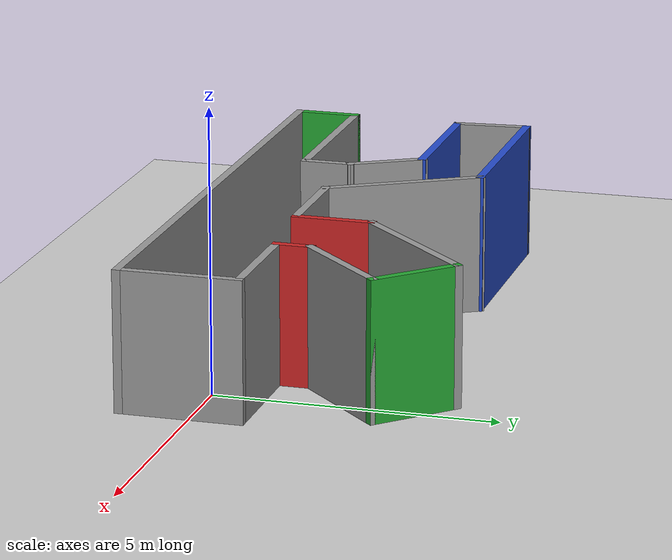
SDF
<sdf version="1.6">
 <world name="default">
  <light name="sun" type="directional">
   <pose>0 0 10 0 -0 0</pose>
   <diffuse>0.8 0.8 0.8 1</diffuse>
   <specular>0.2 0.2 0.2 1</specular>
   <attenuation>
    <range>1000</range>
    <constant>0.9</constant>
    <linear>0.01</linear>
    <quadratic>0.001</quadratic>
   </attenuation>
   <direction>-0.5 0.1 -0.9</direction>
  </light>
  <model name="ground_plane">
   <static>1</static>
   <link name="link">
    <collision name="collision">
     <geometry><plane><normal>0 0 1</normal><size>100 100</size></plane></geometry>
     <surface><friction><ode><mu>100</mu><mu2>50</mu2></ode></friction></surface>
    </collision>
    <visual name="visual">
     <cast_shadows>0</cast_shadows>
     <geometry><plane><normal>0 0 1</normal><size>100 100</size></plane></geometry>
     <material>
      <script><uri>file://media/materials/scripts/gazebo.material</uri><name>Gazebo/Grey</name></script>
     </material>
    </visual>
   </link>
  </model>
  <gravity>0 0 -9.8</gravity>
  <magnetic_field>6e-06 2.3e-05 -4.2e-05</magnetic_field>
  <atmosphere type="adiabatic"/>
  <physics name="default_physics" default="0" type="ode">
   <max_step_size>0.001</max_step_size>
   <real_time_factor>1</real_time_factor>
   <real_time_update_rate>1000</real_time_update_rate>
  </physics>
  <scene><ambient>0.4 0.4 0.4 1</ambient><background>0.7 0.7 0.7 1</background><shadows>1</shadows></scene>
  <spherical_coordinates>
   <surface_model>EARTH_WGS84</surface_model>
   <latitude_deg>0</latitude_deg>
   <longitude_deg>0</longitude_deg>
   <elevation>0</elevation>
   <heading_deg>0</heading_deg>
  </spherical_coordinates>
  <model name="world">
   <pose>-4.08083 1.45877 0 0 -0 0</pose>
   <link name="Wall_0">
    <collision name="Wall_0_Collision">
     <geometry><box><size>3.75 0.15 2.5</size></box></geometry>
     <pose>0 0 1.25 0 -0 0</pose>
    </collision>
    <visual name="Wall_0_Visual">
     <pose>0 0 1.25 0 -0 0</pose>
     <geometry><box><size>3.75 0.15 2.5</size></box></geometry>
     <material>
      <script><uri>file://media/materials/scripts/gazebo.material</uri><name>Gazebo/Blue</name></script>
      <ambient>1 1 1 1</ambient>
     </material>
     <meta><layer>0</layer></meta>
    </visual>
    <pose>-3.51528 1.74553 0 0 -0 0</pose>
   </link>
   <link name="Wall_1">
    <collision name="Wall_1_Collision">
     <geometry><box><size>3 0.15 2.5</size></box></geometry>
     <pose>0 0 1.25 0 -0 0</pose>
    </collision>
    <visual name="Wall_1_Visual">
     <pose>0 0 1.25 0 -0 0</pose>
     <geometry><box><size>3 0.15 2.5</size></box></geometry>
     <material>
      <script><uri>file://media/materials/scripts/gazebo.material</uri><name>Gazebo/Grey</name></script>
      <ambient>1 1 1 1</ambient>
     </material>
     <meta><layer>0</layer></meta>
    </visual>
    <pose>-1.00278 0.511446 0 0 0 -1.0472</pose>
   </link>
   <link name="Wall_10">
    <collision name="Wall_10_Collision">
     <geometry><box><size>10.75 0.15 2.5</size></box></geometry>
     <pose>0 0 1.25 0 -0 0</pose>
    </collision>
    <visual name="Wall_10_Visual">
     <pose>0 0 1.25 0 -0 0</pose>
     <geometry><box><size>10.75 0.15 2.5</size></box></geometry>
     <material>
      <script><uri>file://media/materials/scripts/gazebo.material</uri><name>Gazebo/Grey</name></script>
      <ambient>1 1 1 1</ambient>
     </material>
     <meta><layer>0</layer></meta>
    </visual>
    <pose>0.021422 -2.67368 0 0 -0 3.14159</pose>
   </link>
   <link name="Wall_11">
    <collision name="Wall_11_Collision">
     <geometry><box><size>1.25 0.15 2.5</size></box></geometry>
     <pose>0 0 1.25 0 -0 0</pose>
    </collision>
    <visual name="Wall_11_Visual">
     <pose>0 0 1.25 0 -0 0</pose>
     <geometry><box><size>1.25 0.15 2.5</size></box></geometry>
     <material>
      <script><uri>file://media/materials/scripts/gazebo.material</uri><name>Gazebo/Green</name></script>
      <ambient>1 1 1 1</ambient>
     </material>
     <meta><layer>0</layer></meta>
    </visual>
    <pose>-5.27858 -2.12368 0 0 -0 1.5708</pose>
   </link>
   <link name="Wall_12">
    <collision name="Wall_12_Collision">
     <geometry><box><size>3.5 0.15 2.5</size></box></geometry>
     <pose>0 0 1.25 0 -0 0</pose>
    </collision>
    <visual name="Wall_12_Visual">
     <pose>0 0 1.25 0 -0 0</pose>
     <geometry><box><size>3.5 0.15 2.5</size></box></geometry>
     <material>
      <script><uri>file://media/materials/scripts/gazebo.material</uri><name>Gazebo/Grey</name></script>
      <ambient>1 1 1 1</ambient>
     </material>
     <meta><layer>0</layer></meta>
    </visual>
    <pose>-3.60358 -1.57368 0 0 -0 0</pose>
   </link>
   <link name="Wall_13">
    <collision name="Wall_13_Collision">
     <geometry><box><size>1 0.15 2.5</size></box></geometry>
     <pose>0 0 1.25 0 -0 0</pose>
    </collision>
    <visual name="Wall_13_Visual">
     <pose>0 0 1.25 0 -0 0</pose>
     <geometry><box><size>1 0.15 2.5</size></box></geometry>
     <material>
      <script><uri>file://media/materials/scripts/gazebo.material</uri><name>Gazebo/Grey</name></script>
      <ambient>1 1 1 1</ambient>
     </material>
     <meta><layer>0</layer></meta>
    </visual>
    <pose>-1.92858 -1.14868 0 0 -0 1.5708</pose>
   </link>
   <link name="Wall_14">
    <collision name="Wall_14_Collision">
     <geometry><box><size>1.5 0.15 2.5</size></box></geometry>
     <pose>0 0 1.25 0 -0 0</pose>
    </collision>
    <visual name="Wall_14_Visual">
     <pose>0 0 1.25 0 -0 0</pose>
     <geometry><box><size>1.5 0.15 2.5</size></box></geometry>
     <material>
      <script><uri>file://media/materials/scripts/gazebo.material</uri><name>Gazebo/Grey</name></script>
      <ambient>1 1 1 1</ambient>
     </material>
     <meta><layer>0</layer></meta>
    </visual>
    <pose>-2.26608 -0.139113 0 0 -0 2.0944</pose>
   </link>
   <link name="Wall_15">
    <collision name="Wall_15_Collision">
     <geometry><box><size>2.75 0.15 2.5</size></box></geometry>
     <pose>0 0 1.25 0 -0 0</pose>
    </collision>
    <visual name="Wall_15_Visual">
     <pose>0 0 1.25 0 -0 0</pose>
     <geometry><box><size>2.75 0.15 2.5</size></box></geometry>
     <material>
      <script><uri>file://media/materials/scripts/gazebo.material</uri><name>Gazebo/Blue</name></script>
      <ambient>1 1 1 1</ambient>
     </material>
     <meta><layer>0</layer></meta>
    </visual>
    <pose>-3.90358 0.445454 0 0 -0 3.14159</pose>
   </link>
   <link name="Wall_16">
    <collision name="Wall_16_Collision">
     <geometry><box><size>1.45487 0.15 2.5</size></box></geometry>
     <pose>0 0 1.25 0 -0 0</pose>
    </collision>
    <visual name="Wall_16_Visual">
     <pose>0 0 1.25 0 -0 0</pose>
     <geometry><box><size>1.45487 0.15 2.5</size></box></geometry>
     <material>
      <script><uri>file://media/materials/scripts/gazebo.material</uri><name>Gazebo/Grey</name></script>
      <ambient>1 1 1 1</ambient>
     </material>
     <meta><layer>0</layer></meta>
    </visual>
    <pose>-5.25943 1.09549 0 0 -0 1.6565</pose>
   </link>
   <link name="Wall_2">
    <collision name="Wall_2_Collision">
     <geometry><box><size>2 0.15 2.5</size></box></geometry>
     <pose>0 0 1.25 0 -0 0</pose>
    </collision>
    <visual name="Wall_2_Visual">
     <pose>0 0 1.25 0 -0 0</pose>
     <geometry><box><size>2 0.15 2.5</size></box></geometry>
     <material>
      <script><uri>file://media/materials/scripts/gazebo.material</uri><name>Gazebo/Grey</name></script>
      <ambient>1 1 1 1</ambient>
     </material>
     <meta><layer>0</layer></meta>
    </visual>
    <pose>0.634722 -0.72264 0 0 -0 0</pose>
   </link>
   <link name="Wall_3">
    <collision name="Wall_3_Collision">
     <geometry><box><size>1.5 0.15 2.5</size></box></geometry>
     <pose>0 0 1.25 0 -0 0</pose>
    </collision>
    <visual name="Wall_3_Visual">
     <pose>0 0 1.25 0 -0 0</pose>
     <geometry><box><size>1.5 0.15 2.5</size></box></geometry>
     <material>
      <script><uri>file://media/materials/scripts/gazebo.material</uri><name>Gazebo/Red</name></script>
      <ambient>1 1 1 1</ambient>
     </material>
     <meta><layer>0</layer></meta>
    </visual>
    <pose>1.55972 -0.04764 0 0 -0 1.5708</pose>
   </link>
   <link name="Wall_4">
    <collision name="Wall_4_Collision">
     <geometry><box><size>3 0.15 2.5</size></box></geometry>
     <pose>0 0 1.25 0 -0 0</pose>
    </collision>
    <visual name="Wall_4_Visual">
     <pose>0 0 1.25 0 -0 0</pose>
     <geometry><box><size>3 0.15 2.5</size></box></geometry>
     <material>
      <script><uri>file://media/materials/scripts/gazebo.material</uri><name>Gazebo/Grey</name></script>
      <ambient>1 1 1 1</ambient>
     </material>
     <meta><layer>0</layer></meta>
    </visual>
    <pose>2.56735 1.63499 0 0 -0 0.785398</pose>
   </link>
   <link name="Wall_5">
    <collision name="Wall_5_Collision">
     <geometry><box><size>1.75 0.15 2.5</size></box></geometry>
     <pose>0 0 1.25 0 -0 0</pose>
    </collision>
    <visual name="Wall_5_Visual">
     <pose>0 0 1.25 0 -0 0</pose>
     <geometry><box><size>1.75 0.15 2.5</size></box></geometry>
     <material>
      <script><uri>file://media/materials/scripts/gazebo.material</uri><name>Gazebo/Green</name></script>
      <ambient>1 1 1 1</ambient>
     </material>
     <meta><layer>0</layer></meta>
    </visual>
    <pose>4.14066 2.07693 0 0 0 -0.785398</pose>
   </link>
   <link name="Wall_6">
    <collision name="Wall_6_Collision">
     <geometry><box><size>2.25 0.15 2.5</size></box></geometry>
     <pose>0 0 1.25 0 -0 0</pose>
    </collision>
    <visual name="Wall_6_Visual">
     <pose>0 0 1.25 0 -0 0</pose>
     <geometry><box><size>2.25 0.15 2.5</size></box></geometry>
     <material>
      <script><uri>file://media/materials/scripts/gazebo.material</uri><name>Gazebo/Grey</name></script>
      <ambient>1 1 1 1</ambient>
     </material>
     <meta><layer>0</layer></meta>
    </visual>
    <pose>3.96388 0.768782 0 0 0 -2.35619</pose>
   </link>
   <link name="Wall_7">
    <collision name="Wall_7_Collision">
     <geometry><box><size>0.75 0.15 2.5</size></box></geometry>
     <pose>0 0 1.25 0 -0 0</pose>
    </collision>
    <visual name="Wall_7_Visual">
     <pose>0 0 1.25 0 -0 0</pose>
     <geometry><box><size>0.75 0.15 2.5</size></box></geometry>
     <material>
      <script><uri>file://media/materials/scripts/gazebo.material</uri><name>Gazebo/Red</name></script>
      <ambient>1 1 1 1</ambient>
     </material>
     <meta><layer>0</layer></meta>
    </visual>
    <pose>3.22142 -0.273681 0 0 0 -1.5708</pose>
   </link>
   <link name="Wall_8">
    <collision name="Wall_8_Collision">
     <geometry><box><size>2.25 0.15 2.5</size></box></geometry>
     <pose>0 0 1.25 0 -0 0</pose>
    </collision>
    <visual name="Wall_8_Visual">
     <pose>0 0 1.25 0 -0 0</pose>
     <geometry><box><size>2.25 0.15 2.5</size></box></geometry>
     <material>
      <script><uri>file://media/materials/scripts/gazebo.material</uri><name>Gazebo/Grey</name></script>
      <ambient>1 1 1 1</ambient>
     </material>
     <meta><layer>0</layer></meta>
    </visual>
    <pose>4.27142 -0.573681 0 0 -0 0</pose>
   </link>
   <link name="Wall_9">
    <collision name="Wall_9_Collision">
     <geometry><box><size>2.25 0.15 2.5</size></box></geometry>
     <pose>0 0 1.25 0 -0 0</pose>
    </collision>
    <visual name="Wall_9_Visual">
     <pose>0 0 1.25 0 -0 0</pose>
     <geometry><box><size>2.25 0.15 2.5</size></box></geometry>
     <material>
      <script><uri>file://media/materials/scripts/gazebo.material</uri><name>Gazebo/Grey</name></script>
      <ambient>1 1 1 1</ambient>
     </material>
     <meta><layer>0</layer></meta>
    </visual>
    <pose>5.32142 -1.62368 0 0 0 -1.5708</pose>
   </link>
   <static>1</static>
  </model>
  <plugin filename="libcollision_map_creator.so" name="collision_map_creator"/>
 </world>
</sdf>
